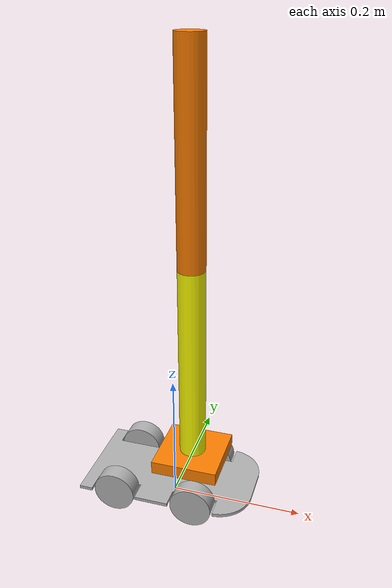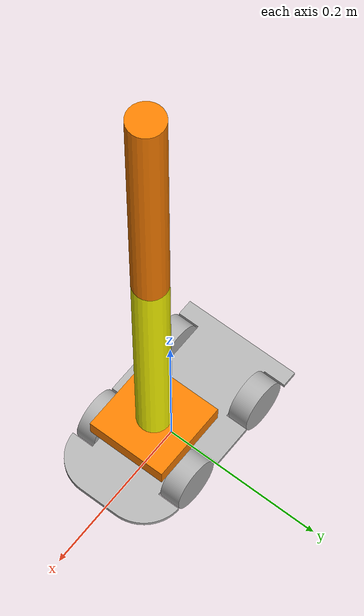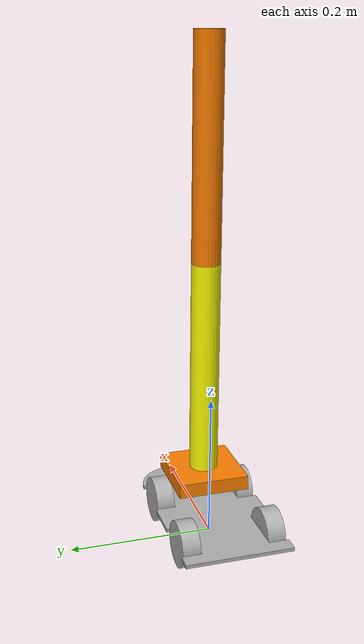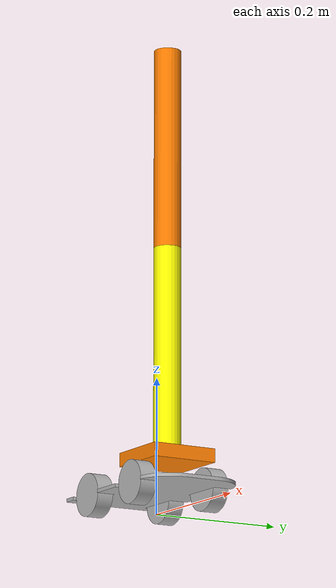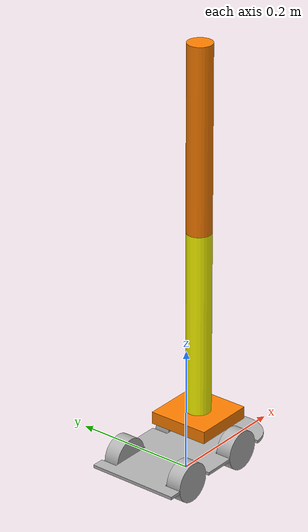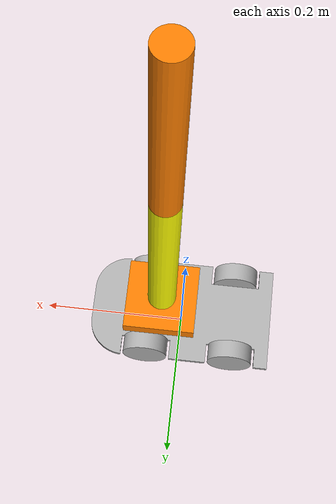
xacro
<?xml version="1.0" ?>
<robot name="noxbot_description" xmlns:xacro="http://www.ros.org/wiki/xacro">

<xacro:include filename="$(find noxbot_description_description)/urdf/materials.xacro" />
<xacro:include filename="$(find noxbot_description_description)/urdf/noxbot_description.ros2control" />
<xacro:include filename="$(find noxbot_description_description)/urdf/noxbot_description.gazebo" />
<xacro:include filename="$(find noxbot_description_description)/urdf/arm.xacro" />

<xacro:property name="base_length" value="0.12" />
<xacro:property name="base_height" value="0.068" />

<link name="base_link">
  <inertial>
    <origin xyz="-0.0005930931306221237 3.257168781287659e-08 0.034" rpy="0 0 0"/>
    <mass value="0.15946138995882295"/>
    <inertia ixx="0.000207" iyy="0.000904" izz="0.00111" ixy="-0.0" iyz="0.0" ixz="0.0"/>
  </inertial>
  <visual>
    <origin xyz="0 0 0" rpy="0 0 0"/>
    <geometry>
      <mesh filename="file://$(find noxbot_description_description)/meshes/base_link.stl" scale="0.001 0.001 0.001"/>
    </geometry>
    <material name="silver"/>
  </visual>
  <collision>
    <origin xyz="0 0 0" rpy="0 0 0"/>
    <geometry>
      <mesh filename="file://$(find noxbot_description_description)/meshes/base_link.stl" scale="0.001 0.001 0.001"/>
    </geometry>
  </collision>
</link>

<link name="front_left_wheel_1">
  <inertial>
    <origin xyz="-1.514124197757316e-07 0.01249999999999999 0.0" rpy="0 0 0"/>
    <mass value="0.07247595346969399"/>
    <inertia ixx="2.2e-05" iyy="3.6e-05" izz="2.2e-05" ixy="0.0" iyz="-0.0" ixz="0.0"/>
  </inertial>
  <visual>
    <origin xyz="-0.04726 -0.047 -0.034" rpy="0 0 0"/>
    <geometry>
      <mesh filename="file://$(find noxbot_description_description)/meshes/front_left_wheel_1.stl" scale="0.001 0.001 0.001"/>
    </geometry>
    <material name="silver"/>
  </visual>
  <collision>
    <origin xyz="-0.04726 -0.047 -0.034" rpy="0 0 0"/>
    <geometry>
      <mesh filename="file://$(find noxbot_description_description)/meshes/front_left_wheel_1.stl" scale="0.001 0.001 0.001"/>
    </geometry>
  </collision>
</link>

<link name="front_right_wheel_1">
  <inertial>
    <origin xyz="-5.256926698116171e-08 -0.01249999999999999 0.0" rpy="0 0 0"/>
    <mass value="0.07247595346969399"/>
    <inertia ixx="2.2e-05" iyy="3.6e-05" izz="2.2e-05" ixy="-0.0" iyz="0.0" ixz="0.0"/>
  </inertial>
  <visual>
    <origin xyz="-0.046968 0.047 -0.034" rpy="0 0 0"/>
    <geometry>
      <mesh filename="file://$(find noxbot_description_description)/meshes/front_right_wheel_1.stl" scale="0.001 0.001 0.001"/>
    </geometry>
    <material name="silver"/>
  </visual>
  <collision>
    <origin xyz="-0.046968 0.047 -0.034" rpy="0 0 0"/>
    <geometry>
      <mesh filename="file://$(find noxbot_description_description)/meshes/front_right_wheel_1.stl" scale="0.001 0.001 0.001"/>
    </geometry>
  </collision>
</link>

<link name="rear_left_wheel_1">
  <inertial>
    <origin xyz="2.0133841800717978e-07 0.01249999999999999 0.0" rpy="0 0 0"/>
    <mass value="0.07247595346969399"/>
    <inertia ixx="2.2e-05" iyy="3.6e-05" izz="2.2e-05" ixy="0.0" iyz="-0.0" ixz="0.0"/>
  </inertial>
  <visual>
    <origin xyz="0.075421 -0.047 -0.034" rpy="0 0 0"/>
    <geometry>
      <mesh filename="file://$(find noxbot_description_description)/meshes/rear_left_wheel_1.stl" scale="0.001 0.001 0.001"/>
    </geometry>
    <material name="silver"/>
  </visual>
  <collision>
    <origin xyz="0.075421 -0.047 -0.034" rpy="0 0 0"/>
    <geometry>
      <mesh filename="file://$(find noxbot_description_description)/meshes/rear_left_wheel_1.stl" scale="0.001 0.001 0.001"/>
    </geometry>
  </collision>
</link>

<link name="rear_right_wheel_1">
  <inertial>
    <origin xyz="1.650254726204281e-07 -0.01249999999999999 6.938893903907228e-18" rpy="0 0 0"/>
    <mass value="0.07247595346969399"/>
    <inertia ixx="2.2e-05" iyy="3.6e-05" izz="2.2e-05" ixy="-0.0" iyz="0.0" ixz="0.0"/>
  </inertial>
  <visual>
    <origin xyz="0.074755 0.047 -0.034" rpy="0 0 0"/>
    <geometry>
      <mesh filename="file://$(find noxbot_description_description)/meshes/rear_right_wheel_1.stl" scale="0.001 0.001 0.001"/>
    </geometry>
    <material name="silver"/>
  </visual>
  <collision>
    <origin xyz="0.074755 0.047 -0.034" rpy="0 0 0"/>
    <geometry>
      <mesh filename="file://$(find noxbot_description_description)/meshes/rear_right_wheel_1.stl" scale="0.001 0.001 0.001"/>
    </geometry>
  </collision>
</link>

<link name="left_wheel_link">
  <inertial>
    <mass value="0.0001"/>
    <inertia ixx="1e-6" iyy="1e-6" izz="1e-6"
             ixy="0" ixz="0" iyz="0"/>
  </inertial>
</link>

<link name="right_wheel_link">
  <inertial>
    <mass value="0.0001"/>
    <inertia ixx="1e-6" iyy="1e-6" izz="1e-6"
             ixy="0" ixz="0" iyz="0"/>
  </inertial>
</link>

<joint name="left_wheel_joint" type="continuous">
  <parent link="base_link"/>
  <child link="left_wheel_link"/>
  <origin xyz="0.0 0.047 0.034"/>
  <axis xyz="0 1 0"/>
</joint>

<joint name="right_wheel_joint" type="continuous">
  <parent link="base_link"/>
  <child link="right_wheel_link"/>
  <origin xyz="0.0 -0.047 0.034"/>
  <axis xyz="0 1 0"/>
</joint>

<joint name="mobile_base_arm_joint" type="fixed">
        <parent link="base_link" />
        <child link="arm_base_link" />
        <origin xyz="${base_length / 4.0} 0 ${base_height}" rpy="0 0 0" />
</joint>

<joint name="front_left_base_joint" type="continuous">
  <origin xyz="0.04726 0.047 0.034" rpy="0 0 0"/>
  <parent link="base_link"/>
  <child link="front_left_wheel_1"/>
  <axis xyz="0.0 1.0 0.0"/>
  <mimic joint="left_wheel_joint"/>
</joint>

<joint name="front_right_base_joint" type="continuous">
  <origin xyz="0.046968 -0.047 0.034" rpy="0 0 0"/>
  <parent link="base_link"/>
  <child link="front_right_wheel_1"/>
  <axis xyz="0.0 1.0 0.0"/>
  <mimic joint="right_wheel_joint"/>
</joint>

<joint name="rear_left_base_joint" type="continuous">
  <origin xyz="-0.075421 0.047 0.034" rpy="0 0 0"/>
  <parent link="base_link"/>
  <child link="rear_left_wheel_1"/>
  <axis xyz="0.0 1.0 0.0"/>
  <mimic joint="left_wheel_joint"/>
</joint>

<joint name="rear_right_base_joint" type="continuous">
  <origin xyz="-0.074755 -0.047 0.034" rpy="0 0 0"/>
  <parent link="base_link"/>
  <child link="rear_right_wheel_1"/>
  <axis xyz="0.0 1.0 0.0"/>
  <mimic joint="right_wheel_joint"/>
</joint>

</robot>

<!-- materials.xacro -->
<robot name="noxbot_description" xmlns:xacro="http://www.ros.org/wiki/xacro" >

<material name="silver">
  <color rgba="0.700 0.700 0.700 1.000"/>
</material>
<material name="blue">
  <color rgba="0 0 0.5 1" /></material>
<material name="grey">
  <color rgba="0.5 0.5 0.5 1" />
</material>

<material name="orange">
  <color rgba="1.0 0.5 0 1" />
</material>

<material name="yellow">
  <color rgba="1.0 1.0 0 1" />
</material>

</robot>

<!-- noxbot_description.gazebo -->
<robot name="noxbot_description" xmlns:xacro="http://www.ros.org/wiki/xacro" >

<xacro:property name="body_color" value="Gazebo/Silver" />

<gazebo reference="base_link">
  <material>${body_color}</material>
  <mu1>0.2</mu1>
  <mu2>0.2</mu2>
  <self_collide>true</self_collide>
  <gravity>true</gravity>
</gazebo>

<gazebo reference="front_left_wheel_1">
  <material>${body_color}</material>
  <mu1>0.2</mu1>
  <mu2>0.2</mu2>
  <self_collide>true</self_collide>
</gazebo>

<gazebo reference="front_right_wheel_1">
  <material>${body_color}</material>
  <mu1>0.2</mu1>
  <mu2>0.2</mu2>
  <self_collide>true</self_collide>
</gazebo>

<gazebo reference="rear_left_wheel_1">
  <material>${body_color}</material>
  <mu1>0.2</mu1>
  <mu2>0.2</mu2>
  <self_collide>true</self_collide>
</gazebo>

<gazebo reference="rear_right_wheel_1">
  <material>${body_color}</material>
  <mu1>0.2</mu1>
  <mu2>0.2</mu2>
  <self_collide>true</self_collide>
</gazebo>

<gazebo>
        <plugin filename="gz_ros2_control-system" name="gz_ros2_control::GazeboSimROS2ControlPlugin">
            <parameters>$(find noxbot_bringup)/config/noxbot_controller.yaml</parameters>
        </plugin>
</gazebo>

</robot>

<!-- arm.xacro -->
<robot xmlns:xacro="http://www.ros.org/wiki/xacro">

    <xacro:property name="arm_base_length" value="0.1" />
    <xacro:property name="arm_base_width" value="0.1" />
    <xacro:property name="arm_base_height" value="0.02" />
    <xacro:property name="forearm_radius" value="0.02" />
    <xacro:property name="forearm_length" value="0.3" />
    <xacro:property name="hand_radius" value="0.02" />
    <xacro:property name="hand_length" value="0.3" />

    <link name="arm_base_link">
        <visual>
            <geometry>
                <box size="${arm_base_length} ${arm_base_width} ${arm_base_height}" />
            </geometry>
            <origin xyz="0 0 ${arm_base_height / 2.0}" rpy="0 0 0" />
            <material name="orange" />
        </visual>
        <collision>
            <geometry>
                <box size="${arm_base_length} ${arm_base_width} ${arm_base_height}" />
            </geometry>
            <origin xyz="0 0 ${arm_base_height / 2.0}" rpy="0 0 0" />
        </collision>
        <inertial>
            <mass value="0.5" />
            <origin xyz="0 0 ${arm_base_height / 2.0}" rpy="0 0 0" />
            <inertia ixx="0.001" iyy="0.001" izz="0.001" ixy="0.0" ixz="0.0" iyz="0.0" />
        </inertial>
    </link>

    <link name="forearm_link">
        <visual>
            <geometry>
                <cylinder radius="${forearm_radius}" length="${forearm_length}" />
            </geometry>
            <origin xyz="0 0 ${forearm_length / 2.0}" rpy="0 0 0" />
            <material name="yellow" />
        </visual>
        <collision>
            <geometry>
                <cylinder radius="${forearm_radius}" length="${forearm_length}" />
            </geometry>
            <origin xyz="0 0 ${forearm_length / 2.0}" rpy="0 0 0" />
        </collision>
        <inertial>
            <mass value="0.3" />
            <origin xyz="0 0 ${forearm_length / 2.0}" rpy="0 0 0" />
            <inertia ixx="0.001" iyy="0.001" izz="0.0001" ixy="0.0" ixz="0.0" iyz="0.0" />
        </inertial>
    </link>

    <link name="hand_link">
        <visual>
            <geometry>
                <cylinder radius="${hand_radius}" length="${hand_length}" />
            </geometry>
            <origin xyz="0 0 ${hand_length / 2.0}" rpy="0 0 0" />
            <material name="orange" />
        </visual>
        <collision>
            <geometry>
                <cylinder radius="${hand_radius}" length="${hand_length}" />
            </geometry>
            <origin xyz="0 0 ${hand_length / 2.0}" rpy="0 0 0" />
        </collision>
        <inertial>
            <mass value="0.2" />
            <origin xyz="0 0 ${hand_length / 2.0}" rpy="0 0 0" />
            <inertia ixx="0.001" iyy="0.001" izz="0.0001" ixy="0.0" ixz="0.0" iyz="0.0" />
        </inertial>
    </link>

    <joint name="arm_joint1" type="revolute">
        <parent link="arm_base_link" />
        <child link="forearm_link" />
        <origin xyz="0 0 ${arm_base_height}" rpy="0 0 0" />
        <axis xyz="0 1 0" />
        <limit lower="0" upper="${pi/2}" effort="100" velocity="100" />
        <dynamics friction="0.05" damping="0.1" />
    </joint>

    <joint name="arm_joint2" type="revolute">
        <parent link="forearm_link" />
        <child link="hand_link" />
        <origin xyz="0 0 ${forearm_length}" rpy="0 0 0" />
        <axis xyz="0 1 0" />
        <limit lower="0" upper="${pi/2}" effort="100" velocity="100" />
        <dynamics friction="0.05" damping="0.1" />
    </joint>

</robot>
